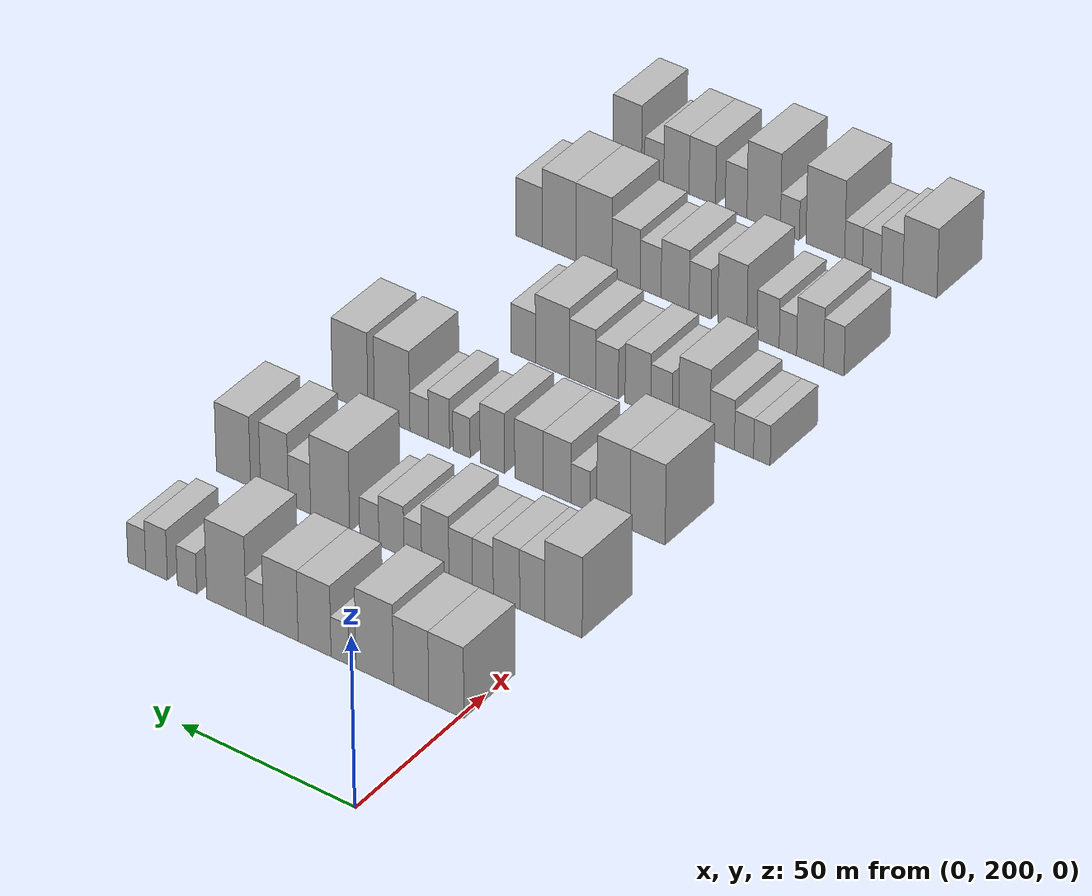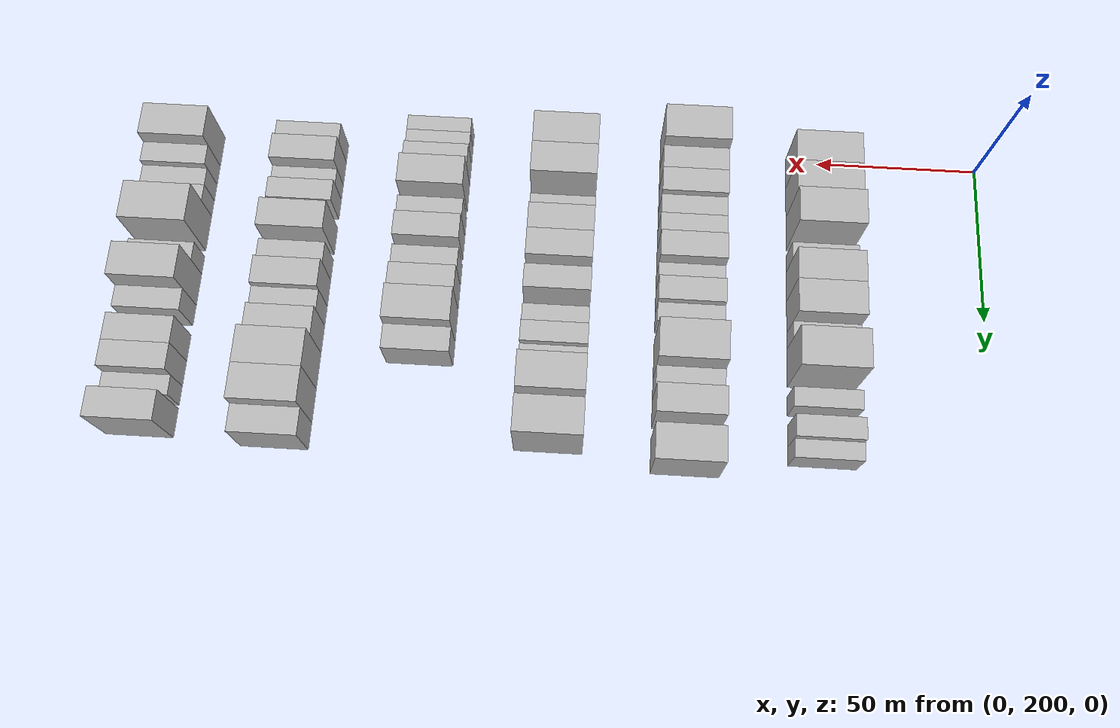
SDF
<sdf version="1.6">
 <world name="default">
  <model name="building_97">
   <static>1</static>
   <pose>50.0000 203.9280 0 0.000000 0.000000 0.000000</pose>
   <link name="link">
    <pose>0 0 10.50 0 0 0</pose>
    <collision name="collision"><geometry><box><size>20.0000 10.1513 21.0000</size></box></geometry></collision>
    <visual name="visual">
     <cast_shadows>0</cast_shadows>
     <geometry><box><size>20.0000 10.1513 21.0000</size></box></geometry>
     <material>
      <script>
       <uri>model://HANNAS_wall/materials/scripts</uri>
       <uri>model://HANNAS_wall/materials/textures</uri>
       <name>vrc/HANNAS_wall</name>
      </script>
     </material>
    </visual>
   </link>
  </model>
  <model name="building_98">
   <static>1</static>
   <pose>50.0000 214.1001 0 0.000000 0.000000 0.000000</pose>
   <link name="link">
    <pose>0 0 10.50 0 0 0</pose>
    <collision name="collision"><geometry><box><size>20.0000 10.1929 21.0000</size></box></geometry></collision>
    <visual name="visual">
     <cast_shadows>0</cast_shadows>
     <geometry><box><size>20.0000 10.1929 21.0000</size></box></geometry>
     <material>
      <script>
       <uri>model://HANNAS_wall/materials/scripts</uri>
       <uri>model://HANNAS_wall/materials/textures</uri>
       <name>vrc/HANNAS_wall</name>
      </script>
     </material>
    </visual>
   </link>
  </model>
  <model name="building_99">
   <static>1</static>
   <pose>50.0000 224.6728 0 0.000000 0.000000 0.000000</pose>
   <link name="link">
    <pose>0 0 12.00 0 0 0</pose>
    <collision name="collision"><geometry><box><size>20.0000 10.9527 24.0000</size></box></geometry></collision>
    <visual name="visual">
     <cast_shadows>0</cast_shadows>
     <geometry><box><size>20.0000 10.9527 24.0000</size></box></geometry>
     <material>
      <script>
       <uri>model://HANNAS_wall/materials/scripts</uri>
       <uri>model://HANNAS_wall/materials/textures</uri>
       <name>vrc/HANNAS_wall</name>
      </script>
     </material>
    </visual>
   </link>
  </model>
  <model name="building_100">
   <static>1</static>
   <pose>50.0000 234.7954 0 0.000000 0.000000 0.000000</pose>
   <link name="link">
    <pose>0 0 6.00 0 0 0</pose>
    <collision name="collision"><geometry><box><size>20.0000 5.2924 12.0000</size></box></geometry></collision>
    <visual name="visual">
     <cast_shadows>0</cast_shadows>
     <geometry><box><size>20.0000 5.2924 12.0000</size></box></geometry>
     <material>
      <script>
       <uri>model://HANNAS_wall/materials/scripts</uri>
       <uri>model://HANNAS_wall/materials/textures</uri>
       <name>vrc/HANNAS_wall</name>
      </script>
     </material>
    </visual>
   </link>
  </model>
  <model name="building_101">
   <static>1</static>
   <pose>50.0000 242.2827 0 0.000000 0.000000 0.000000</pose>
   <link name="link">
    <pose>0 0 10.50 0 0 0</pose>
    <collision name="collision"><geometry><box><size>20.0000 9.6823 21.0000</size></box></geometry></collision>
    <visual name="visual">
     <cast_shadows>0</cast_shadows>
     <geometry><box><size>20.0000 9.6823 21.0000</size></box></geometry>
     <material>
      <script>
       <uri>model://HANNAS_wall/materials/scripts</uri>
       <uri>model://HANNAS_wall/materials/textures</uri>
       <name>vrc/HANNAS_wall</name>
      </script>
     </material>
    </visual>
   </link>
  </model>
  <model name="building_102">
   <static>1</static>
   <pose>50.0000 252.2230 0 0.000000 0.000000 0.000000</pose>
   <link name="link">
    <pose>0 0 10.50 0 0 0</pose>
    <collision name="collision"><geometry><box><size>20.0000 10.1983 21.0000</size></box></geometry></collision>
    <visual name="visual">
     <cast_shadows>0</cast_shadows>
     <geometry><box><size>20.0000 10.1983 21.0000</size></box></geometry>
     <material>
      <script>
       <uri>model://HANNAS_wall/materials/scripts</uri>
       <uri>model://HANNAS_wall/materials/textures</uri>
       <name>vrc/HANNAS_wall</name>
      </script>
     </material>
    </visual>
   </link>
  </model>
  <model name="building_103">
   <static>1</static>
   <pose>50.0000 259.9116 0 0.000000 0.000000 0.000000</pose>
   <link name="link">
    <pose>0 0 6.00 0 0 0</pose>
    <collision name="collision"><geometry><box><size>20.0000 5.1789 12.0000</size></box></geometry></collision>
    <visual name="visual">
     <cast_shadows>0</cast_shadows>
     <geometry><box><size>20.0000 5.1789 12.0000</size></box></geometry>
     <material>
      <script>
       <uri>model://HANNAS_wall/materials/scripts</uri>
       <uri>model://HANNAS_wall/materials/textures</uri>
       <name>vrc/HANNAS_wall</name>
      </script>
     </material>
    </visual>
   </link>
  </model>
  <model name="building_104">
   <static>1</static>
   <pose>50.0000 268.3672 0 0.000000 0.000000 0.000000</pose>
   <link name="link">
    <pose>0 0 12.00 0 0 0</pose>
    <collision name="collision"><geometry><box><size>20.0000 11.7323 24.0000</size></box></geometry></collision>
    <visual name="visual">
     <cast_shadows>0</cast_shadows>
     <geometry><box><size>20.0000 11.7323 24.0000</size></box></geometry>
     <material>
      <script>
       <uri>model://HANNAS_wall/materials/scripts</uri>
       <uri>model://HANNAS_wall/materials/textures</uri>
       <name>vrc/HANNAS_wall</name>
      </script>
     </material>
    </visual>
   </link>
  </model>
  <model name="building_105">
   <static>1</static>
   <pose>50.0000 280.1421 0 0.000000 0.000000 0.000000</pose>
   <link name="link">
    <pose>0 0 6.00 0 0 0</pose>
    <collision name="collision"><geometry><box><size>20.0000 5.8175 12.0000</size></box></geometry></collision>
    <visual name="visual">
     <cast_shadows>0</cast_shadows>
     <geometry><box><size>20.0000 5.8175 12.0000</size></box></geometry>
     <material>
      <script>
       <uri>model://HANNAS_wall/materials/scripts</uri>
       <uri>model://HANNAS_wall/materials/textures</uri>
       <name>vrc/HANNAS_wall</name>
      </script>
     </material>
    </visual>
   </link>
  </model>
  <model name="building_106">
   <static>1</static>
   <pose>50.0000 289.2971 0 0.000000 0.000000 0.000000</pose>
   <link name="link">
    <pose>0 0 7.50 0 0 0</pose>
    <collision name="collision"><geometry><box><size>20.0000 6.4925 15.0000</size></box></geometry></collision>
    <visual name="visual">
     <cast_shadows>0</cast_shadows>
     <geometry><box><size>20.0000 6.4925 15.0000</size></box></geometry>
     <material>
      <script>
       <uri>model://HANNAS_wall/materials/scripts</uri>
       <uri>model://HANNAS_wall/materials/textures</uri>
       <name>vrc/HANNAS_wall</name>
      </script>
     </material>
    </visual>
   </link>
  </model>
  <model name="building_107">
   <static>1</static>
   <pose>50.0000 295.2575 0 0.000000 0.000000 0.000000</pose>
   <link name="link">
    <pose>0 0 6.00 0 0 0</pose>
    <collision name="collision"><geometry><box><size>20.0000 5.4283 12.0000</size></box></geometry></collision>
    <visual name="visual">
     <cast_shadows>0</cast_shadows>
     <geometry><box><size>20.0000 5.4283 12.0000</size></box></geometry>
     <material>
      <script>
       <uri>model://HANNAS_wall/materials/scripts</uri>
       <uri>model://HANNAS_wall/materials/textures</uri>
       <name>vrc/HANNAS_wall</name>
      </script>
     </material>
    </visual>
   </link>
  </model>
  <model name="building_229">
   <static>1</static>
   <pose>90.0000 199.5418 0 0.000000 0.000000 0.000000</pose>
   <link name="link">
    <pose>0 0 12.00 0 0 0</pose>
    <collision name="collision"><geometry><box><size>20.0000 10.8950 24.0000</size></box></geometry></collision>
    <visual name="visual">
     <cast_shadows>0</cast_shadows>
     <geometry><box><size>20.0000 10.8950 24.0000</size></box></geometry>
     <material>
      <script>
       <uri>model://HANNAS_wall/materials/scripts</uri>
       <uri>model://HANNAS_wall/materials/textures</uri>
       <name>vrc/HANNAS_wall</name>
      </script>
     </material>
    </visual>
   </link>
  </model>
  <model name="building_230">
   <static>1</static>
   <pose>90.0000 208.6091 0 0.000000 0.000000 0.000000</pose>
   <link name="link">
    <pose>0 0 9.00 0 0 0</pose>
    <collision name="collision"><geometry><box><size>20.0000 7.2396 18.0000</size></box></geometry></collision>
    <visual name="visual">
     <cast_shadows>0</cast_shadows>
     <geometry><box><size>20.0000 7.2396 18.0000</size></box></geometry>
     <material>
      <script>
       <uri>model://HANNAS_wall/materials/scripts</uri>
       <uri>model://HANNAS_wall/materials/textures</uri>
       <name>vrc/HANNAS_wall</name>
      </script>
     </material>
    </visual>
   </link>
  </model>
  <model name="building_231">
   <static>1</static>
   <pose>90.0000 216.0855 0 0.000000 0.000000 0.000000</pose>
   <link name="link">
    <pose>0 0 9.00 0 0 0</pose>
    <collision name="collision"><geometry><box><size>20.0000 7.7131 18.0000</size></box></geometry></collision>
    <visual name="visual">
     <cast_shadows>0</cast_shadows>
     <geometry><box><size>20.0000 7.7131 18.0000</size></box></geometry>
     <material>
      <script>
       <uri>model://HANNAS_wall/materials/scripts</uri>
       <uri>model://HANNAS_wall/materials/textures</uri>
       <name>vrc/HANNAS_wall</name>
      </script>
     </material>
    </visual>
   </link>
  </model>
  <model name="building_232">
   <static>1</static>
   <pose>90.0000 222.9839 0 0.000000 0.000000 0.000000</pose>
   <link name="link">
    <pose>0 0 7.50 0 0 0</pose>
    <collision name="collision"><geometry><box><size>20.0000 6.0838 15.0000</size></box></geometry></collision>
    <visual name="visual">
     <cast_shadows>0</cast_shadows>
     <geometry><box><size>20.0000 6.0838 15.0000</size></box></geometry>
     <material>
      <script>
       <uri>model://HANNAS_wall/materials/scripts</uri>
       <uri>model://HANNAS_wall/materials/textures</uri>
       <name>vrc/HANNAS_wall</name>
      </script>
     </material>
    </visual>
   </link>
  </model>
  <model name="building_233">
   <static>1</static>
   <pose>90.0000 229.4927 0 0.000000 0.000000 0.000000</pose>
   <link name="link">
    <pose>0 0 7.50 0 0 0</pose>
    <collision name="collision"><geometry><box><size>20.0000 6.9340 15.0000</size></box></geometry></collision>
    <visual name="visual">
     <cast_shadows>0</cast_shadows>
     <geometry><box><size>20.0000 6.9340 15.0000</size></box></geometry>
     <material>
      <script>
       <uri>model://HANNAS_wall/materials/scripts</uri>
       <uri>model://HANNAS_wall/materials/textures</uri>
       <name>vrc/HANNAS_wall</name>
      </script>
     </material>
    </visual>
   </link>
  </model>
  <model name="building_234">
   <static>1</static>
   <pose>90.0000 236.9910 0 0.000000 0.000000 0.000000</pose>
   <link name="link">
    <pose>0 0 9.00 0 0 0</pose>
    <collision name="collision"><geometry><box><size>20.0000 8.0625 18.0000</size></box></geometry></collision>
    <visual name="visual">
     <cast_shadows>0</cast_shadows>
     <geometry><box><size>20.0000 8.0625 18.0000</size></box></geometry>
     <material>
      <script>
       <uri>model://HANNAS_wall/materials/scripts</uri>
       <uri>model://HANNAS_wall/materials/textures</uri>
       <name>vrc/HANNAS_wall</name>
      </script>
     </material>
    </visual>
   </link>
  </model>
  <model name="building_235">
   <static>1</static>
   <pose>90.0000 243.6408 0 0.000000 0.000000 0.000000</pose>
   <link name="link">
    <pose>0 0 6.00 0 0 0</pose>
    <collision name="collision"><geometry><box><size>20.0000 5.2370 12.0000</size></box></geometry></collision>
    <visual name="visual">
     <cast_shadows>0</cast_shadows>
     <geometry><box><size>20.0000 5.2370 12.0000</size></box></geometry>
     <material>
      <script>
       <uri>model://HANNAS_wall/materials/scripts</uri>
       <uri>model://HANNAS_wall/materials/textures</uri>
       <name>vrc/HANNAS_wall</name>
      </script>
     </material>
    </visual>
   </link>
  </model>
  <model name="building_236">
   <static>1</static>
   <pose>90.0000 249.9774 0 0.000000 0.000000 0.000000</pose>
   <link name="link">
    <pose>0 0 7.50 0 0 0</pose>
    <collision name="collision"><geometry><box><size>20.0000 7.4363 15.0000</size></box></geometry></collision>
    <visual name="visual">
     <cast_shadows>0</cast_shadows>
     <geometry><box><size>20.0000 7.4363 15.0000</size></box></geometry>
     <material>
      <script>
       <uri>model://HANNAS_wall/materials/scripts</uri>
       <uri>model://HANNAS_wall/materials/textures</uri>
       <name>vrc/HANNAS_wall</name>
      </script>
     </material>
    </visual>
   </link>
  </model>
  <model name="building_237">
   <static>1</static>
   <pose>90.0000 256.5594 0 0.000000 0.000000 0.000000</pose>
   <link name="link">
    <pose>0 0 6.00 0 0 0</pose>
    <collision name="collision"><geometry><box><size>20.0000 5.7278 12.0000</size></box></geometry></collision>
    <visual name="visual">
     <cast_shadows>0</cast_shadows>
     <geometry><box><size>20.0000 5.7278 12.0000</size></box></geometry>
     <material>
      <script>
       <uri>model://HANNAS_wall/materials/scripts</uri>
       <uri>model://HANNAS_wall/materials/textures</uri>
       <name>vrc/HANNAS_wall</name>
      </script>
     </material>
    </visual>
   </link>
  </model>
  <model name="building_238">
   <static>1</static>
   <pose>90.0000 268.2699 0 0.000000 0.000000 0.000000</pose>
   <link name="link">
    <pose>0 0 12.00 0 0 0</pose>
    <collision name="collision"><geometry><box><size>20.0000 11.6932 24.0000</size></box></geometry></collision>
    <visual name="visual">
     <cast_shadows>0</cast_shadows>
     <geometry><box><size>20.0000 11.6932 24.0000</size></box></geometry>
     <material>
      <script>
       <uri>model://HANNAS_wall/materials/scripts</uri>
       <uri>model://HANNAS_wall/materials/textures</uri>
       <name>vrc/HANNAS_wall</name>
      </script>
     </material>
    </visual>
   </link>
  </model>
  <model name="building_239">
   <static>1</static>
   <pose>90.0000 277.4567 0 0.000000 0.000000 0.000000</pose>
   <link name="link">
    <pose>0 0 7.50 0 0 0</pose>
    <collision name="collision"><geometry><box><size>20.0000 6.6804 15.0000</size></box></geometry></collision>
    <visual name="visual">
     <cast_shadows>0</cast_shadows>
     <geometry><box><size>20.0000 6.6804 15.0000</size></box></geometry>
     <material>
      <script>
       <uri>model://HANNAS_wall/materials/scripts</uri>
       <uri>model://HANNAS_wall/materials/textures</uri>
       <name>vrc/HANNAS_wall</name>
      </script>
     </material>
    </visual>
   </link>
  </model>
  <model name="building_240">
   <static>1</static>
   <pose>90.0000 285.0285 0 0.000000 0.000000 0.000000</pose>
   <link name="link">
    <pose>0 0 10.50 0 0 0</pose>
    <collision name="collision"><geometry><box><size>20.0000 8.4633 21.0000</size></box></geometry></collision>
    <visual name="visual">
     <cast_shadows>0</cast_shadows>
     <geometry><box><size>20.0000 8.4633 21.0000</size></box></geometry>
     <material>
      <script>
       <uri>model://HANNAS_wall/materials/scripts</uri>
       <uri>model://HANNAS_wall/materials/textures</uri>
       <name>vrc/HANNAS_wall</name>
      </script>
     </material>
    </visual>
   </link>
  </model>
  <model name="building_241">
   <static>1</static>
   <pose>90.0000 297.4556 0 0.000000 0.000000 0.000000</pose>
   <link name="link">
    <pose>0 0 10.50 0 0 0</pose>
    <collision name="collision"><geometry><box><size>20.0000 10.3908 21.0000</size></box></geometry></collision>
    <visual name="visual">
     <cast_shadows>0</cast_shadows>
     <geometry><box><size>20.0000 10.3908 21.0000</size></box></geometry>
     <material>
      <script>
       <uri>model://HANNAS_wall/materials/scripts</uri>
       <uri>model://HANNAS_wall/materials/textures</uri>
       <name>vrc/HANNAS_wall</name>
      </script>
     </material>
    </visual>
   </link>
  </model>
  <model name="building_369">
   <static>1</static>
   <pose>130.0000 203.8050 0 0.000000 0.000000 0.000000</pose>
   <link name="link">
    <pose>0 0 12.00 0 0 0</pose>
    <collision name="collision"><geometry><box><size>20.0000 10.1730 24.0000</size></box></geometry></collision>
    <visual name="visual">
     <cast_shadows>0</cast_shadows>
     <geometry><box><size>20.0000 10.1730 24.0000</size></box></geometry>
     <material>
      <script>
       <uri>model://HANNAS_wall/materials/scripts</uri>
       <uri>model://HANNAS_wall/materials/textures</uri>
       <name>vrc/HANNAS_wall</name>
      </script>
     </material>
    </visual>
   </link>
  </model>
  <model name="building_370">
   <static>1</static>
   <pose>130.0000 213.8009 0 0.000000 0.000000 0.000000</pose>
   <link name="link">
    <pose>0 0 12.00 0 0 0</pose>
    <collision name="collision"><geometry><box><size>20.0000 9.8188 24.0000</size></box></geometry></collision>
    <visual name="visual">
     <cast_shadows>0</cast_shadows>
     <geometry><box><size>20.0000 9.8188 24.0000</size></box></geometry>
     <material>
      <script>
       <uri>model://HANNAS_wall/materials/scripts</uri>
       <uri>model://HANNAS_wall/materials/textures</uri>
       <name>vrc/HANNAS_wall</name>
      </script>
     </material>
    </visual>
   </link>
  </model>
  <model name="building_371">
   <static>1</static>
   <pose>130.0000 223.5262 0 0.000000 0.000000 0.000000</pose>
   <link name="link">
    <pose>0 0 6.00 0 0 0</pose>
    <collision name="collision"><geometry><box><size>20.0000 5.6320 12.0000</size></box></geometry></collision>
    <visual name="visual">
     <cast_shadows>0</cast_shadows>
     <geometry><box><size>20.0000 5.6320 12.0000</size></box></geometry>
     <material>
      <script>
       <uri>model://HANNAS_wall/materials/scripts</uri>
       <uri>model://HANNAS_wall/materials/textures</uri>
       <name>vrc/HANNAS_wall</name>
      </script>
     </material>
    </visual>
   </link>
  </model>
  <model name="building_372">
   <static>1</static>
   <pose>130.0000 230.4371 0 0.000000 0.000000 0.000000</pose>
   <link name="link">
    <pose>0 0 9.00 0 0 0</pose>
    <collision name="collision"><geometry><box><size>20.0000 8.1897 18.0000</size></box></geometry></collision>
    <visual name="visual">
     <cast_shadows>0</cast_shadows>
     <geometry><box><size>20.0000 8.1897 18.0000</size></box></geometry>
     <material>
      <script>
       <uri>model://HANNAS_wall/materials/scripts</uri>
       <uri>model://HANNAS_wall/materials/textures</uri>
       <name>vrc/HANNAS_wall</name>
      </script>
     </material>
    </visual>
   </link>
  </model>
  <model name="building_373">
   <static>1</static>
   <pose>130.0000 238.7920 0 0.000000 0.000000 0.000000</pose>
   <link name="link">
    <pose>0 0 9.00 0 0 0</pose>
    <collision name="collision"><geometry><box><size>20.0000 8.5200 18.0000</size></box></geometry></collision>
    <visual name="visual">
     <cast_shadows>0</cast_shadows>
     <geometry><box><size>20.0000 8.5200 18.0000</size></box></geometry>
     <material>
      <script>
       <uri>model://HANNAS_wall/materials/scripts</uri>
       <uri>model://HANNAS_wall/materials/textures</uri>
       <name>vrc/HANNAS_wall</name>
      </script>
     </material>
    </visual>
   </link>
  </model>
  <model name="building_374">
   <static>1</static>
   <pose>130.0000 249.7193 0 0.000000 0.000000 0.000000</pose>
   <link name="link">
    <pose>0 0 9.00 0 0 0</pose>
    <collision name="collision"><geometry><box><size>20.0000 7.3346 18.0000</size></box></geometry></collision>
    <visual name="visual">
     <cast_shadows>0</cast_shadows>
     <geometry><box><size>20.0000 7.3346 18.0000</size></box></geometry>
     <material>
      <script>
       <uri>model://HANNAS_wall/materials/scripts</uri>
       <uri>model://HANNAS_wall/materials/textures</uri>
       <name>vrc/HANNAS_wall</name>
      </script>
     </material>
    </visual>
   </link>
  </model>
  <model name="building_375">
   <static>1</static>
   <pose>130.0000 258.9674 0 0.000000 0.000000 0.000000</pose>
   <link name="link">
    <pose>0 0 6.00 0 0 0</pose>
    <collision name="collision"><geometry><box><size>20.0000 5.1616 12.0000</size></box></geometry></collision>
    <visual name="visual">
     <cast_shadows>0</cast_shadows>
     <geometry><box><size>20.0000 5.1616 12.0000</size></box></geometry>
     <material>
      <script>
       <uri>model://HANNAS_wall/materials/scripts</uri>
       <uri>model://HANNAS_wall/materials/textures</uri>
       <name>vrc/HANNAS_wall</name>
      </script>
     </material>
    </visual>
   </link>
  </model>
  <model name="building_376">
   <static>1</static>
   <pose>130.0000 265.7236 0 0.000000 0.000000 0.000000</pose>
   <link name="link">
    <pose>0 0 7.50 0 0 0</pose>
    <collision name="collision"><geometry><box><size>20.0000 6.3510 15.0000</size></box></geometry></collision>
    <visual name="visual">
     <cast_shadows>0</cast_shadows>
     <geometry><box><size>20.0000 6.3510 15.0000</size></box></geometry>
     <material>
      <script>
       <uri>model://HANNAS_wall/materials/scripts</uri>
       <uri>model://HANNAS_wall/materials/textures</uri>
       <name>vrc/HANNAS_wall</name>
      </script>
     </material>
    </visual>
   </link>
  </model>
  <model name="building_377">
   <static>1</static>
   <pose>130.0000 271.7196 0 0.000000 0.000000 0.000000</pose>
   <link name="link">
    <pose>0 0 6.00 0 0 0</pose>
    <collision name="collision"><geometry><box><size>20.0000 5.6410 12.0000</size></box></geometry></collision>
    <visual name="visual">
     <cast_shadows>0</cast_shadows>
     <geometry><box><size>20.0000 5.6410 12.0000</size></box></geometry>
     <material>
      <script>
       <uri>model://HANNAS_wall/materials/scripts</uri>
       <uri>model://HANNAS_wall/materials/textures</uri>
       <name>vrc/HANNAS_wall</name>
      </script>
     </material>
    </visual>
   </link>
  </model>
  <model name="building_378">
   <static>1</static>
   <pose>130.0000 279.8891 0 0.000000 0.000000 0.000000</pose>
   <link name="link">
    <pose>0 0 12.00 0 0 0</pose>
    <collision name="collision"><geometry><box><size>20.0000 10.6981 24.0000</size></box></geometry></collision>
    <visual name="visual">
     <cast_shadows>0</cast_shadows>
     <geometry><box><size>20.0000 10.6981 24.0000</size></box></geometry>
     <material>
      <script>
       <uri>model://HANNAS_wall/materials/scripts</uri>
       <uri>model://HANNAS_wall/materials/textures</uri>
       <name>vrc/HANNAS_wall</name>
      </script>
     </material>
    </visual>
   </link>
  </model>
  <model name="building_379">
   <static>1</static>
   <pose>130.0000 292.6658 0 0.000000 0.000000 0.000000</pose>
   <link name="link">
    <pose>0 0 12.00 0 0 0</pose>
    <collision name="collision"><geometry><box><size>20.0000 10.8551 24.0000</size></box></geometry></collision>
    <visual name="visual">
     <cast_shadows>0</cast_shadows>
     <geometry><box><size>20.0000 10.8551 24.0000</size></box></geometry>
     <material>
      <script>
       <uri>model://HANNAS_wall/materials/scripts</uri>
       <uri>model://HANNAS_wall/materials/textures</uri>
       <name>vrc/HANNAS_wall</name>
      </script>
     </material>
    </visual>
   </link>
  </model>
  <model name="building_509">
   <static>1</static>
   <pose>170.0000 198.5991 0 0.000000 0.000000 0.000000</pose>
   <link name="link">
    <pose>0 0 6.00 0 0 0</pose>
    <collision name="collision"><geometry><box><size>20.0000 4.8759 12.0000</size></box></geometry></collision>
    <visual name="visual">
     <cast_shadows>0</cast_shadows>
     <geometry><box><size>20.0000 4.8759 12.0000</size></box></geometry>
     <material>
      <script>
       <uri>model://HANNAS_wall/materials/scripts</uri>
       <uri>model://HANNAS_wall/materials/textures</uri>
       <name>vrc/HANNAS_wall</name>
      </script>
     </material>
    </visual>
   </link>
  </model>
  <model name="building_510">
   <static>1</static>
   <pose>170.0000 203.8507 0 0.000000 0.000000 0.000000</pose>
   <link name="link">
    <pose>0 0 6.00 0 0 0</pose>
    <collision name="collision"><geometry><box><size>20.0000 5.6272 12.0000</size></box></geometry></collision>
    <visual name="visual">
     <cast_shadows>0</cast_shadows>
     <geometry><box><size>20.0000 5.6272 12.0000</size></box></geometry>
     <material>
      <script>
       <uri>model://HANNAS_wall/materials/scripts</uri>
       <uri>model://HANNAS_wall/materials/textures</uri>
       <name>vrc/HANNAS_wall</name>
      </script>
     </material>
    </visual>
   </link>
  </model>
  <model name="building_511">
   <static>1</static>
   <pose>170.0000 210.2463 0 0.000000 0.000000 0.000000</pose>
   <link name="link">
    <pose>0 0 7.50 0 0 0</pose>
    <collision name="collision"><geometry><box><size>20.0000 7.1641 15.0000</size></box></geometry></collision>
    <visual name="visual">
     <cast_shadows>0</cast_shadows>
     <geometry><box><size>20.0000 7.1641 15.0000</size></box></geometry>
     <material>
      <script>
       <uri>model://HANNAS_wall/materials/scripts</uri>
       <uri>model://HANNAS_wall/materials/textures</uri>
       <name>vrc/HANNAS_wall</name>
      </script>
     </material>
    </visual>
   </link>
  </model>
  <model name="building_512">
   <static>1</static>
   <pose>170.0000 218.4559 0 0.000000 0.000000 0.000000</pose>
   <link name="link">
    <pose>0 0 10.50 0 0 0</pose>
    <collision name="collision"><geometry><box><size>20.0000 9.2551 21.0000</size></box></geometry></collision>
    <visual name="visual">
     <cast_shadows>0</cast_shadows>
     <geometry><box><size>20.0000 9.2551 21.0000</size></box></geometry>
     <material>
      <script>
       <uri>model://HANNAS_wall/materials/scripts</uri>
       <uri>model://HANNAS_wall/materials/textures</uri>
       <name>vrc/HANNAS_wall</name>
      </script>
     </material>
    </visual>
   </link>
  </model>
  <model name="building_513">
   <static>1</static>
   <pose>170.0000 228.2526 0 0.000000 0.000000 0.000000</pose>
   <link name="link">
    <pose>0 0 7.50 0 0 0</pose>
    <collision name="collision"><geometry><box><size>20.0000 6.3382 15.0000</size></box></geometry></collision>
    <visual name="visual">
     <cast_shadows>0</cast_shadows>
     <geometry><box><size>20.0000 6.3382 15.0000</size></box></geometry>
     <material>
      <script>
       <uri>model://HANNAS_wall/materials/scripts</uri>
       <uri>model://HANNAS_wall/materials/textures</uri>
       <name>vrc/HANNAS_wall</name>
      </script>
     </material>
    </visual>
   </link>
  </model>
  <model name="building_514">
   <static>1</static>
   <pose>170.0000 235.2819 0 0.000000 0.000000 0.000000</pose>
   <link name="link">
    <pose>0 0 9.00 0 0 0</pose>
    <collision name="collision"><geometry><box><size>20.0000 7.7205 18.0000</size></box></geometry></collision>
    <visual name="visual">
     <cast_shadows>0</cast_shadows>
     <geometry><box><size>20.0000 7.7205 18.0000</size></box></geometry>
     <material>
      <script>
       <uri>model://HANNAS_wall/materials/scripts</uri>
       <uri>model://HANNAS_wall/materials/textures</uri>
       <name>vrc/HANNAS_wall</name>
      </script>
     </material>
    </visual>
   </link>
  </model>
  <model name="building_515">
   <static>1</static>
   <pose>170.0000 244.5425 0 0.000000 0.000000 0.000000</pose>
   <link name="link">
    <pose>0 0 7.50 0 0 0</pose>
    <collision name="collision"><geometry><box><size>20.0000 6.8007 15.0000</size></box></geometry></collision>
    <visual name="visual">
     <cast_shadows>0</cast_shadows>
     <geometry><box><size>20.0000 6.8007 15.0000</size></box></geometry>
     <material>
      <script>
       <uri>model://HANNAS_wall/materials/scripts</uri>
       <uri>model://HANNAS_wall/materials/textures</uri>
       <name>vrc/HANNAS_wall</name>
      </script>
     </material>
    </visual>
   </link>
  </model>
  <model name="building_516">
   <static>1</static>
   <pose>170.0000 251.8797 0 0.000000 0.000000 0.000000</pose>
   <link name="link">
    <pose>0 0 9.00 0 0 0</pose>
    <collision name="collision"><geometry><box><size>20.0000 7.8737 18.0000</size></box></geometry></collision>
    <visual name="visual">
     <cast_shadows>0</cast_shadows>
     <geometry><box><size>20.0000 7.8737 18.0000</size></box></geometry>
     <material>
      <script>
       <uri>model://HANNAS_wall/materials/scripts</uri>
       <uri>model://HANNAS_wall/materials/textures</uri>
       <name>vrc/HANNAS_wall</name>
      </script>
     </material>
    </visual>
   </link>
  </model>
  <model name="building_517">
   <static>1</static>
   <pose>170.0000 260.9835 0 0.000000 0.000000 0.000000</pose>
   <link name="link">
    <pose>0 0 10.50 0 0 0</pose>
    <collision name="collision"><geometry><box><size>20.0000 10.3339 21.0000</size></box></geometry></collision>
    <visual name="visual">
     <cast_shadows>0</cast_shadows>
     <geometry><box><size>20.0000 10.3339 21.0000</size></box></geometry>
     <material>
      <script>
       <uri>model://HANNAS_wall/materials/scripts</uri>
       <uri>model://HANNAS_wall/materials/textures</uri>
       <name>vrc/HANNAS_wall</name>
      </script>
     </material>
    </visual>
   </link>
  </model>
  <model name="building_518">
   <static>1</static>
   <pose>170.0000 269.8825 0 0.000000 0.000000 0.000000</pose>
   <link name="link">
    <pose>0 0 7.50 0 0 0</pose>
    <collision name="collision"><geometry><box><size>20.0000 7.4643 15.0000</size></box></geometry></collision>
    <visual name="visual">
     <cast_shadows>0</cast_shadows>
     <geometry><box><size>20.0000 7.4643 15.0000</size></box></geometry>
     <material>
      <script>
       <uri>model://HANNAS_wall/materials/scripts</uri>
       <uri>model://HANNAS_wall/materials/textures</uri>
       <name>vrc/HANNAS_wall</name>
      </script>
     </material>
    </visual>
   </link>
  </model>
  <model name="building_646">
   <static>1</static>
   <pose>210.0000 205.0204 0 0.000000 0.000000 0.000000</pose>
   <link name="link">
    <pose>0 0 7.50 0 0 0</pose>
    <collision name="collision"><geometry><box><size>20.0000 6.0363 15.0000</size></box></geometry></collision>
    <visual name="visual">
     <cast_shadows>0</cast_shadows>
     <geometry><box><size>20.0000 6.0363 15.0000</size></box></geometry>
     <material>
      <script>
       <uri>model://HANNAS_wall/materials/scripts</uri>
       <uri>model://HANNAS_wall/materials/textures</uri>
       <name>vrc/HANNAS_wall</name>
      </script>
     </material>
    </visual>
   </link>
  </model>
  <model name="building_647">
   <static>1</static>
   <pose>210.0000 212.0512 0 0.000000 0.000000 0.000000</pose>
   <link name="link">
    <pose>0 0 9.00 0 0 0</pose>
    <collision name="collision"><geometry><box><size>20.0000 8.0252 18.0000</size></box></geometry></collision>
    <visual name="visual">
     <cast_shadows>0</cast_shadows>
     <geometry><box><size>20.0000 8.0252 18.0000</size></box></geometry>
     <material>
      <script>
       <uri>model://HANNAS_wall/materials/scripts</uri>
       <uri>model://HANNAS_wall/materials/textures</uri>
       <name>vrc/HANNAS_wall</name>
      </script>
     </material>
    </visual>
   </link>
  </model>
  <model name="building_648">
   <static>1</static>
   <pose>210.0000 218.6685 0 0.000000 0.000000 0.000000</pose>
   <link name="link">
    <pose>0 0 6.00 0 0 0</pose>
    <collision name="collision"><geometry><box><size>20.0000 5.2095 12.0000</size></box></geometry></collision>
    <visual name="visual">
     <cast_shadows>0</cast_shadows>
     <geometry><box><size>20.0000 5.2095 12.0000</size></box></geometry>
     <material>
      <script>
       <uri>model://HANNAS_wall/materials/scripts</uri>
       <uri>model://HANNAS_wall/materials/textures</uri>
       <name>vrc/HANNAS_wall</name>
      </script>
     </material>
    </visual>
   </link>
  </model>
  <model name="building_649">
   <static>1</static>
   <pose>210.0000 224.5981 0 0.000000 0.000000 0.000000</pose>
   <link name="link">
    <pose>0 0 7.50 0 0 0</pose>
    <collision name="collision"><geometry><box><size>20.0000 6.6497 15.0000</size></box></geometry></collision>
    <visual name="visual">
     <cast_shadows>0</cast_shadows>
     <geometry><box><size>20.0000 6.6497 15.0000</size></box></geometry>
     <material>
      <script>
       <uri>model://HANNAS_wall/materials/scripts</uri>
       <uri>model://HANNAS_wall/materials/textures</uri>
       <name>vrc/HANNAS_wall</name>
      </script>
     </material>
    </visual>
   </link>
  </model>
  <model name="building_650">
   <static>1</static>
   <pose>210.0000 235.3156 0 0.000000 0.000000 0.000000</pose>
   <link name="link">
    <pose>0 0 10.50 0 0 0</pose>
    <collision name="collision"><geometry><box><size>20.0000 8.7852 21.0000</size></box></geometry></collision>
    <visual name="visual">
     <cast_shadows>0</cast_shadows>
     <geometry><box><size>20.0000 8.7852 21.0000</size></box></geometry>
     <material>
      <script>
       <uri>model://HANNAS_wall/materials/scripts</uri>
       <uri>model://HANNAS_wall/materials/textures</uri>
       <name>vrc/HANNAS_wall</name>
      </script>
     </material>
    </visual>
   </link>
  </model>
  <model name="building_651">
   <static>1</static>
   <pose>210.0000 245.0167 0 0.000000 0.000000 0.000000</pose>
   <link name="link">
    <pose>0 0 7.50 0 0 0</pose>
    <collision name="collision"><geometry><box><size>20.0000 6.6171 15.0000</size></box></geometry></collision>
    <visual name="visual">
     <cast_shadows>0</cast_shadows>
     <geometry><box><size>20.0000 6.6171 15.0000</size></box></geometry>
     <material>
      <script>
       <uri>model://HANNAS_wall/materials/scripts</uri>
       <uri>model://HANNAS_wall/materials/textures</uri>
       <name>vrc/HANNAS_wall</name>
      </script>
     </material>
    </visual>
   </link>
  </model>
  <model name="building_652">
   <static>1</static>
   <pose>210.0000 252.5813 0 0.000000 0.000000 0.000000</pose>
   <link name="link">
    <pose>0 0 9.00 0 0 0</pose>
    <collision name="collision"><geometry><box><size>20.0000 8.5121 18.0000</size></box></geometry></collision>
    <visual name="visual">
     <cast_shadows>0</cast_shadows>
     <geometry><box><size>20.0000 8.5121 18.0000</size></box></geometry>
     <material>
      <script>
       <uri>model://HANNAS_wall/materials/scripts</uri>
       <uri>model://HANNAS_wall/materials/textures</uri>
       <name>vrc/HANNAS_wall</name>
      </script>
     </material>
    </visual>
   </link>
  </model>
  <model name="building_653">
   <static>1</static>
   <pose>210.0000 259.9922 0 0.000000 0.000000 0.000000</pose>
   <link name="link">
    <pose>0 0 7.50 0 0 0</pose>
    <collision name="collision"><geometry><box><size>20.0000 6.3095 15.0000</size></box></geometry></collision>
    <visual name="visual">
     <cast_shadows>0</cast_shadows>
     <geometry><box><size>20.0000 6.3095 15.0000</size></box></geometry>
     <material>
      <script>
       <uri>model://HANNAS_wall/materials/scripts</uri>
       <uri>model://HANNAS_wall/materials/textures</uri>
       <name>vrc/HANNAS_wall</name>
      </script>
     </material>
    </visual>
   </link>
  </model>
  <model name="building_654">
   <static>1</static>
   <pose>210.0000 267.5090 0 0.000000 0.000000 0.000000</pose>
   <link name="link">
    <pose>0 0 9.00 0 0 0</pose>
    <collision name="collision"><geometry><box><size>20.0000 8.7241 18.0000</size></box></geometry></collision>
    <visual name="visual">
     <cast_shadows>0</cast_shadows>
     <geometry><box><size>20.0000 8.7241 18.0000</size></box></geometry>
     <material>
      <script>
       <uri>model://HANNAS_wall/materials/scripts</uri>
       <uri>model://HANNAS_wall/materials/textures</uri>
       <name>vrc/HANNAS_wall</name>
      </script>
     </material>
    </visual>
   </link>
  </model>
  <model name="building_655">
   <static>1</static>
   <pose>210.0000 277.4106 0 0.000000 0.000000 0.000000</pose>
   <link name="link">
    <pose>0 0 12.00 0 0 0</pose>
    <collision name="collision"><geometry><box><size>20.0000 11.0790 24.0000</size></box></geometry></collision>
    <visual name="visual">
     <cast_shadows>0</cast_shadows>
     <geometry><box><size>20.0000 11.0790 24.0000</size></box></geometry>
     <material>
      <script>
       <uri>model://HANNAS_wall/materials/scripts</uri>
       <uri>model://HANNAS_wall/materials/textures</uri>
       <name>vrc/HANNAS_wall</name>
      </script>
     </material>
    </visual>
   </link>
  </model>
  <model name="building_656">
   <static>1</static>
   <pose>210.0000 288.1415 0 0.000000 0.000000 0.000000</pose>
   <link name="link">
    <pose>0 0 12.00 0 0 0</pose>
    <collision name="collision"><geometry><box><size>20.0000 10.3828 24.0000</size></box></geometry></collision>
    <visual name="visual">
     <cast_shadows>0</cast_shadows>
     <geometry><box><size>20.0000 10.3828 24.0000</size></box></geometry>
     <material>
      <script>
       <uri>model://HANNAS_wall/materials/scripts</uri>
       <uri>model://HANNAS_wall/materials/textures</uri>
       <name>vrc/HANNAS_wall</name>
      </script>
     </material>
    </visual>
   </link>
  </model>
  <model name="building_657">
   <static>1</static>
   <pose>210.0000 297.3898 0 0.000000 0.000000 0.000000</pose>
   <link name="link">
    <pose>0 0 9.00 0 0 0</pose>
    <collision name="collision"><geometry><box><size>20.0000 8.1138 18.0000</size></box></geometry></collision>
    <visual name="visual">
     <cast_shadows>0</cast_shadows>
     <geometry><box><size>20.0000 8.1138 18.0000</size></box></geometry>
     <material>
      <script>
       <uri>model://HANNAS_wall/materials/scripts</uri>
       <uri>model://HANNAS_wall/materials/textures</uri>
       <name>vrc/HANNAS_wall</name>
      </script>
     </material>
    </visual>
   </link>
  </model>
  <model name="building_785">
   <static>1</static>
   <pose>250.0000 206.6099 0 0.000000 0.000000 0.000000</pose>
   <link name="link">
    <pose>0 0 10.50 0 0 0</pose>
    <collision name="collision"><geometry><box><size>20.0000 10.2278 21.0000</size></box></geometry></collision>
    <visual name="visual">
     <cast_shadows>0</cast_shadows>
     <geometry><box><size>20.0000 10.2278 21.0000</size></box></geometry>
     <material>
      <script>
       <uri>model://HANNAS_wall/materials/scripts</uri>
       <uri>model://HANNAS_wall/materials/textures</uri>
       <name>vrc/HANNAS_wall</name>
      </script>
     </material>
    </visual>
   </link>
  </model>
  <model name="building_786">
   <static>1</static>
   <pose>250.0000 214.9584 0 0.000000 0.000000 0.000000</pose>
   <link name="link">
    <pose>0 0 7.50 0 0 0</pose>
    <collision name="collision"><geometry><box><size>20.0000 6.4691 15.0000</size></box></geometry></collision>
    <visual name="visual">
     <cast_shadows>0</cast_shadows>
     <geometry><box><size>20.0000 6.4691 15.0000</size></box></geometry>
     <material>
      <script>
       <uri>model://HANNAS_wall/materials/scripts</uri>
       <uri>model://HANNAS_wall/materials/textures</uri>
       <name>vrc/HANNAS_wall</name>
      </script>
     </material>
    </visual>
   </link>
  </model>
  <model name="building_787">
   <static>1</static>
   <pose>250.0000 220.9896 0 0.000000 0.000000 0.000000</pose>
   <link name="link">
    <pose>0 0 6.00 0 0 0</pose>
    <collision name="collision"><geometry><box><size>20.0000 5.5933 12.0000</size></box></geometry></collision>
    <visual name="visual">
     <cast_shadows>0</cast_shadows>
     <geometry><box><size>20.0000 5.5933 12.0000</size></box></geometry>
     <material>
      <script>
       <uri>model://HANNAS_wall/materials/scripts</uri>
       <uri>model://HANNAS_wall/materials/textures</uri>
       <name>vrc/HANNAS_wall</name>
      </script>
     </material>
    </visual>
   </link>
  </model>
  <model name="building_788">
   <static>1</static>
   <pose>250.0000 226.4723 0 0.000000 0.000000 0.000000</pose>
   <link name="link">
    <pose>0 0 6.00 0 0 0</pose>
    <collision name="collision"><geometry><box><size>20.0000 5.3721 12.0000</size></box></geometry></collision>
    <visual name="visual">
     <cast_shadows>0</cast_shadows>
     <geometry><box><size>20.0000 5.3721 12.0000</size></box></geometry>
     <material>
      <script>
       <uri>model://HANNAS_wall/materials/scripts</uri>
       <uri>model://HANNAS_wall/materials/textures</uri>
       <name>vrc/HANNAS_wall</name>
      </script>
     </material>
    </visual>
   </link>
  </model>
  <model name="building_789">
   <static>1</static>
   <pose>250.0000 235.0172 0 0.000000 0.000000 0.000000</pose>
   <link name="link">
    <pose>0 0 12.00 0 0 0</pose>
    <collision name="collision"><geometry><box><size>20.0000 11.7177 24.0000</size></box></geometry></collision>
    <visual name="visual">
     <cast_shadows>0</cast_shadows>
     <geometry><box><size>20.0000 11.7177 24.0000</size></box></geometry>
     <material>
      <script>
       <uri>model://HANNAS_wall/materials/scripts</uri>
       <uri>model://HANNAS_wall/materials/textures</uri>
       <name>vrc/HANNAS_wall</name>
      </script>
     </material>
    </visual>
   </link>
  </model>
  <model name="building_790">
   <static>1</static>
   <pose>250.0000 245.7545 0 0.000000 0.000000 0.000000</pose>
   <link name="link">
    <pose>0 0 6.00 0 0 0</pose>
    <collision name="collision"><geometry><box><size>20.0000 5.7570 12.0000</size></box></geometry></collision>
    <visual name="visual">
     <cast_shadows>0</cast_shadows>
     <geometry><box><size>20.0000 5.7570 12.0000</size></box></geometry>
     <material>
      <script>
       <uri>model://HANNAS_wall/materials/scripts</uri>
       <uri>model://HANNAS_wall/materials/textures</uri>
       <name>vrc/HANNAS_wall</name>
      </script>
     </material>
    </visual>
   </link>
  </model>
  <model name="building_791">
   <static>1</static>
   <pose>250.0000 253.7454 0 0.000000 0.000000 0.000000</pose>
   <link name="link">
    <pose>0 0 12.00 0 0 0</pose>
    <collision name="collision"><geometry><box><size>20.0000 10.2247 24.0000</size></box></geometry></collision>
    <visual name="visual">
     <cast_shadows>0</cast_shadows>
     <geometry><box><size>20.0000 10.2247 24.0000</size></box></geometry>
     <material>
      <script>
       <uri>model://HANNAS_wall/materials/scripts</uri>
       <uri>model://HANNAS_wall/materials/textures</uri>
       <name>vrc/HANNAS_wall</name>
      </script>
     </material>
    </visual>
   </link>
  </model>
  <model name="building_792">
   <static>1</static>
   <pose>250.0000 262.1716 0 0.000000 0.000000 0.000000</pose>
   <link name="link">
    <pose>0 0 7.50 0 0 0</pose>
    <collision name="collision"><geometry><box><size>20.0000 6.6277 15.0000</size></box></geometry></collision>
    <visual name="visual">
     <cast_shadows>0</cast_shadows>
     <geometry><box><size>20.0000 6.6277 15.0000</size></box></geometry>
     <material>
      <script>
       <uri>model://HANNAS_wall/materials/scripts</uri>
       <uri>model://HANNAS_wall/materials/textures</uri>
       <name>vrc/HANNAS_wall</name>
      </script>
     </material>
    </visual>
   </link>
  </model>
  <model name="building_793">
   <static>1</static>
   <pose>250.0000 272.5623 0 0.000000 0.000000 0.000000</pose>
   <link name="link">
    <pose>0 0 9.00 0 0 0</pose>
    <collision name="collision"><geometry><box><size>20.0000 8.1537 18.0000</size></box></geometry></collision>
    <visual name="visual">
     <cast_shadows>0</cast_shadows>
     <geometry><box><size>20.0000 8.1537 18.0000</size></box></geometry>
     <material>
      <script>
       <uri>model://HANNAS_wall/materials/scripts</uri>
       <uri>model://HANNAS_wall/materials/textures</uri>
       <name>vrc/HANNAS_wall</name>
      </script>
     </material>
    </visual>
   </link>
  </model>
  <model name="building_794">
   <static>1</static>
   <pose>250.0000 280.5675 0 0.000000 0.000000 0.000000</pose>
   <link name="link">
    <pose>0 0 9.00 0 0 0</pose>
    <collision name="collision"><geometry><box><size>20.0000 7.8568 18.0000</size></box></geometry></collision>
    <visual name="visual">
     <cast_shadows>0</cast_shadows>
     <geometry><box><size>20.0000 7.8568 18.0000</size></box></geometry>
     <material>
      <script>
       <uri>model://HANNAS_wall/materials/scripts</uri>
       <uri>model://HANNAS_wall/materials/textures</uri>
       <name>vrc/HANNAS_wall</name>
      </script>
     </material>
    </visual>
   </link>
  </model>
  <model name="building_795">
   <static>1</static>
   <pose>250.0000 287.4472 0 0.000000 0.000000 0.000000</pose>
   <link name="link">
    <pose>0 0 6.00 0 0 0</pose>
    <collision name="collision"><geometry><box><size>20.0000 5.9026 12.0000</size></box></geometry></collision>
    <visual name="visual">
     <cast_shadows>0</cast_shadows>
     <geometry><box><size>20.0000 5.9026 12.0000</size></box></geometry>
     <material>
      <script>
       <uri>model://HANNAS_wall/materials/scripts</uri>
       <uri>model://HANNAS_wall/materials/textures</uri>
       <name>vrc/HANNAS_wall</name>
      </script>
     </material>
    </visual>
   </link>
  </model>
  <model name="building_796">
   <static>1</static>
   <pose>250.0000 295.8032 0 0.000000 0.000000 0.000000</pose>
   <link name="link">
    <pose>0 0 10.50 0 0 0</pose>
    <collision name="collision"><geometry><box><size>20.0000 8.8094 21.0000</size></box></geometry></collision>
    <visual name="visual">
     <cast_shadows>0</cast_shadows>
     <geometry><box><size>20.0000 8.8094 21.0000</size></box></geometry>
     <material>
      <script>
       <uri>model://HANNAS_wall/materials/scripts</uri>
       <uri>model://HANNAS_wall/materials/textures</uri>
       <name>vrc/HANNAS_wall</name>
      </script>
     </material>
    </visual>
   </link>
  </model>
 </world>
</sdf>
